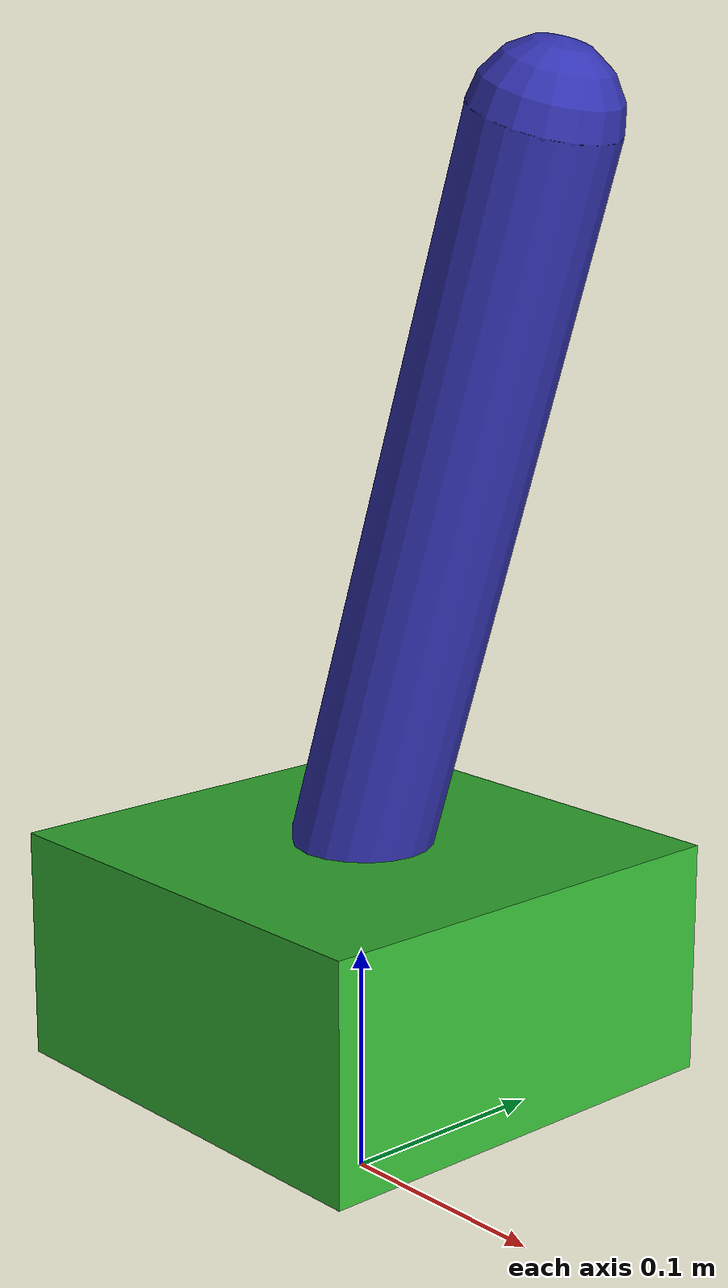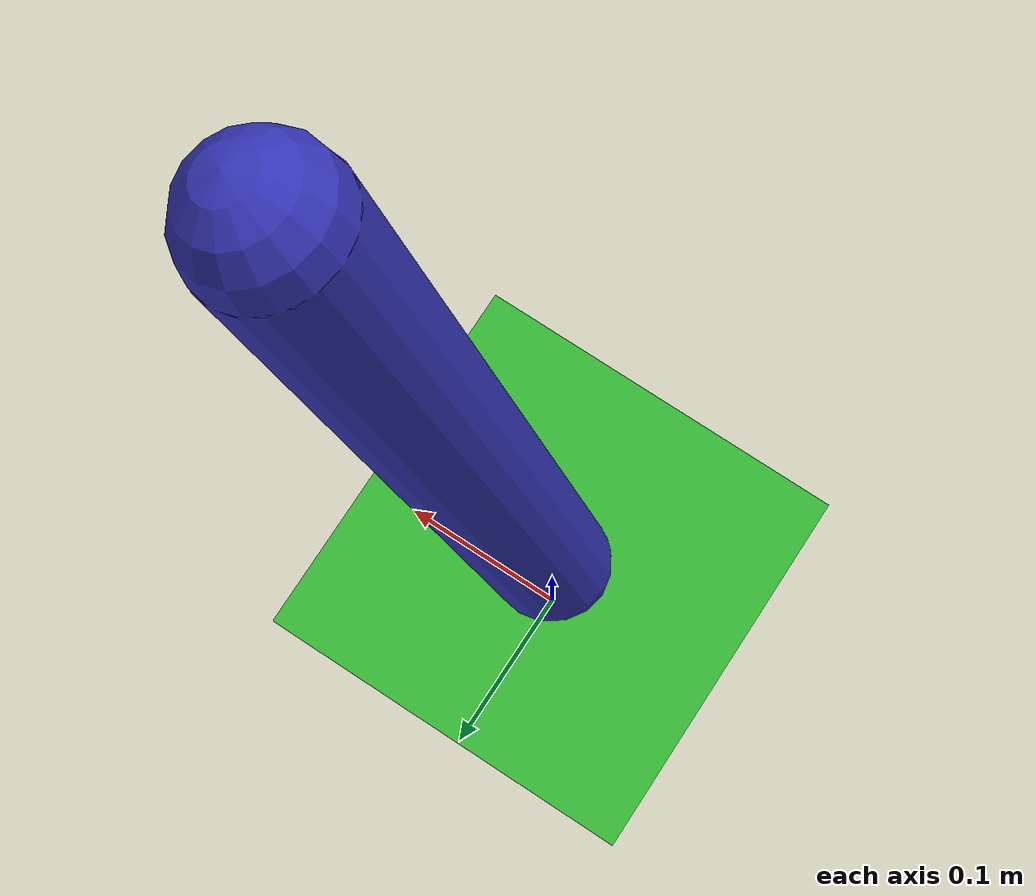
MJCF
<mujoco model="cartpole">
    <compiler angle="radian" coordinate="local" />
    <option timestep="0.01" gravity="0 0 -9.81" />

    <worldbody>

        <body name="cart" pos="0 0 .1">
            <joint name="cart_joint" type="slide" axis="1 0 0" range="-2.4 2.4" />
            <geom type="box" size="0.1 0.1 0.05" rgba="0.2 0.7 0.2 1" />
            <inertial pos=".05 .05 .025" mass="1" diaginertia="1 1 1"/>
                <body name="link1" pos="0 0 .05">
                    <joint name="hinge" type="hinge" axis="0 1 0" range="-6.28 6.28" />
                    <geom type="capsule" fromto="0 0 0 .1 0 0.3" size="0.03" rgba="0.2 0.2 0.7 1"/>
                    <inertial pos=".05 0 .15" mass=".5" diaginertia="1 1 1"/>

                </body>
        </body>
    </worldbody>

    <actuator>
        <motor name="cart_motor" joint="cart_joint" gear="1" ctrllimited="true" ctrlrange="-10 10" />

    </actuator>
</mujoco>
